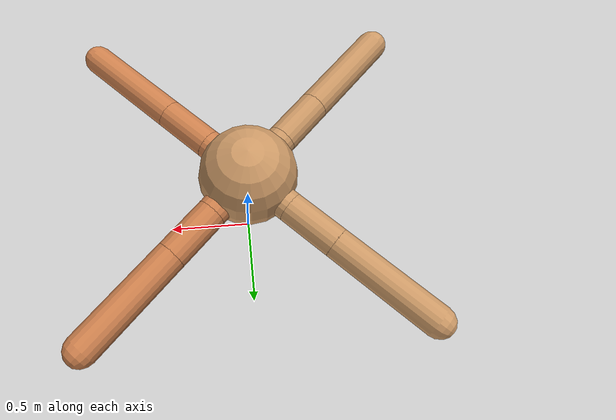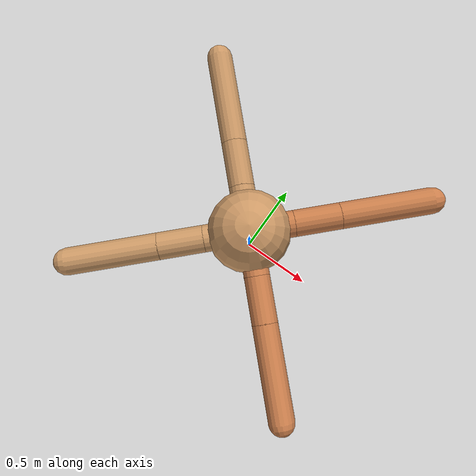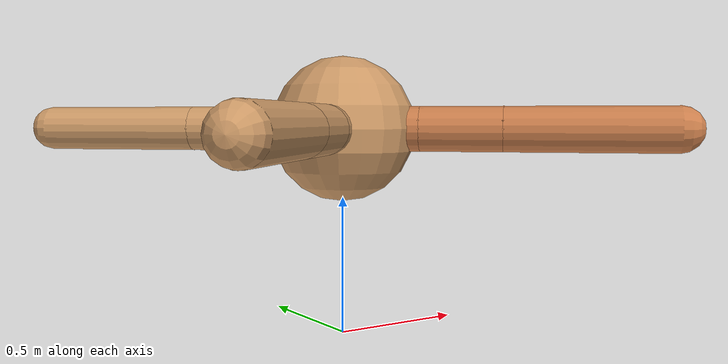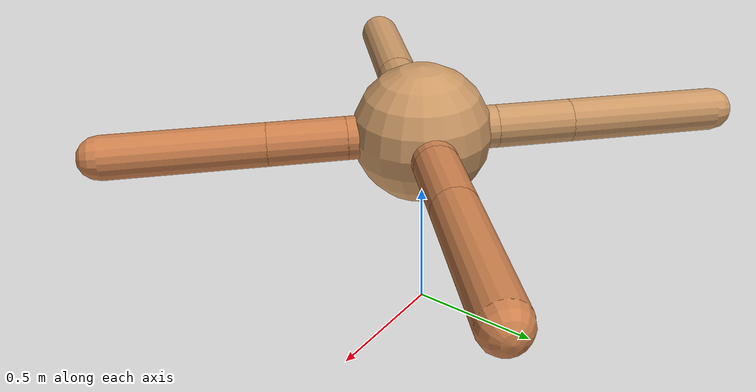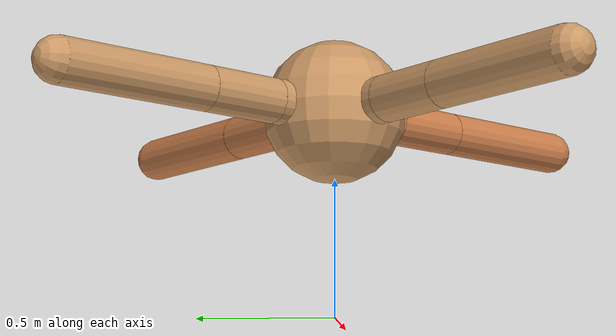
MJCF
<?xml version="1.0" ?>
<mujoco model="ant">

	<compiler angle="degree" coordinate="local" inertiafromgeom="true"/>

	<option integrator="RK4" timestep="0.01"/>

	<custom>

		<numeric data="0.0 0.0 0.55 1.0 0.0 0.0 0.0 0.0 1.0 0.0 -1.0 0.0 -1.0 0.0 1.0" name="init_qpos"/>

	</custom>

	<default>

		<joint armature="1" damping="1" limited="true"/>

		<geom conaffinity="0" condim="3" density="5.0" friction="1.5 0.1 0.1" margin="0.01" rgba="0.8 0.6 0.4 1"/>

	</default>

	<worldbody>

		<body name="torso" pos="0 0 0.75">

			<geom name="torso_geom" pos="0 0 0" size="0.26188375123311863" type="sphere"/>

			<!--joint armature="0" damping="0" limited="false" margin="0.01" name="root" pos="0 0 0" type="free"/-->

			<body name="front_left_leg" pos="0 0 0">

				<geom fromto="0 0 0 0.2 0.2 0" name="aux_1_geom" size="0.08399291398057013" type="capsule" rgba=".8 .5 .3 1"/>

				<body name="aux_1" pos="0.2 0.2 0">

					<joint axis="0 0 1" name="hip_1" pos="0.0 0.0 0.0" range="-40 40" type="hinge"/>

					<geom fromto="0 0 0 0.20540633734620314 0.20540633734620314 0" name="left_leg_geom" size="0.08399291398057013" type="capsule" rgba=".8 .5 .3 1"/>

					<body pos="0.20540633734620314 0.20540633734620314 0" name="front_left_foot">

						<joint axis="-1 1 0" name="ankle_1" pos="0.0 0.0 0.0" range="30 100" type="hinge"/>

						<geom fromto="0 0 0 0.4108126746924063 0.4108126746924063 0" name="left_ankle_geom" size="0.08399291398057013" type="capsule" rgba=".8 .5 .3 1"/>

					</body>

				</body>

			</body>

			<body name="front_right_leg" pos="0 0 0">

				<geom fromto="0 0 0 -0.2 0.2 0" name="aux_2_geom" size="0.08172091029047715" type="capsule"/>

				<body name="aux_2" pos="-0.2 0.2 0">

					<joint axis="0 0 1" name="hip_2" pos="0.0 0.0 0.0" range="-40 40" type="hinge"/>

					<geom fromto="0 0 0 -0.2055746381368247 0.2055746381368247 0" name="right_leg_geom" size="0.08172091029047715" type="capsule"/>

					<body pos="-0.2055746381368247 0.2055746381368247 0" name="front_right_foot">

						<joint axis="1 1 0" name="ankle_2" pos="0.0 0.0 0.0" range="-100 -30" type="hinge"/>

						<geom fromto="0 0 0 -0.4111492762736494 0.4111492762736494 0" name="right_ankle_geom" size="0.08172091029047715" type="capsule"/>

					</body>

				</body>

			</body>

			<body name="left_back_leg" pos="0 0 0">

				<geom fromto="0 0 0 -0.2 -0.2 0" name="aux_3_geom" size="0.08544192840733221" type="capsule"/>

				<body name="aux_3" pos="-0.2 -0.2 0">

					<joint axis="0 0 1" name="hip_3" pos="0.0 0.0 0.0" range="-40 40" type="hinge"/>

					<geom fromto="0 0 0 -0.1995746970138573 -0.1995746970138573 0" name="back_leg_geom" size="0.08544192840733221" type="capsule"/>

					<body pos="-0.1995746970138573 -0.1995746970138573 0" name="left_back_foot">

						<joint axis="-1 1 0" name="ankle_3" pos="0.0 0.0 0.0" range="-100 -30" type="hinge"/>

						<geom fromto="0 0 0 -0.3991493940277146 -0.3991493940277146 0" name="third_ankle_geom" size="0.08544192840733221" type="capsule"/>

					</body>

				</body>

			</body>

			<body name="right_back_leg" pos="0 0 0">

				<geom fromto="0 0 0 0.2 -0.2 0" name="aux_4_geom" size="0.0809487414490212" type="capsule" rgba=".8 .5 .3 1"/>

				<body name="aux_4" pos="0.2 -0.2 0">

					<joint axis="0 0 1" name="hip_4" pos="0.0 0.0 0.0" range="-40 40" type="hinge"/>

					<geom fromto="0 0 0 0.20505128005188059 -0.20505128005188059 0" name="rightback_leg_geom" size="0.0809487414490212" type="capsule" rgba=".8 .5 .3 1"/>

					<body pos="0.20505128005188059 -0.20505128005188059 0" name="right_back_foot">

						<joint axis="1 1 0" name="ankle_4" pos="0.0 0.0 0.0" range="30 100" type="hinge"/>

						<geom fromto="0 0 0 0.41010256010376117 -0.41010256010376117 0" name="fourth_ankle_geom" size="0.0809487414490212" type="capsule" rgba=".8 .5 .3 1"/>

					</body>

				</body>

			</body>

		</body>

	</worldbody>

	<actuator>

		<motor ctrllimited="true" ctrlrange="-1.0 1.0" joint="hip_4" gear="150"/>

		<motor ctrllimited="true" ctrlrange="-1.0 1.0" joint="ankle_4" gear="150"/>

		<motor ctrllimited="true" ctrlrange="-1.0 1.0" joint="hip_1" gear="150"/>

		<motor ctrllimited="true" ctrlrange="-1.0 1.0" joint="ankle_1" gear="150"/>

		<motor ctrllimited="true" ctrlrange="-1.0 1.0" joint="hip_2" gear="150"/>

		<motor ctrllimited="true" ctrlrange="-1.0 1.0" joint="ankle_2" gear="150"/>

		<motor ctrllimited="true" ctrlrange="-1.0 1.0" joint="hip_3" gear="150"/>

		<motor ctrllimited="true" ctrlrange="-1.0 1.0" joint="ankle_3" gear="150"/>

	</actuator>

</mujoco>
